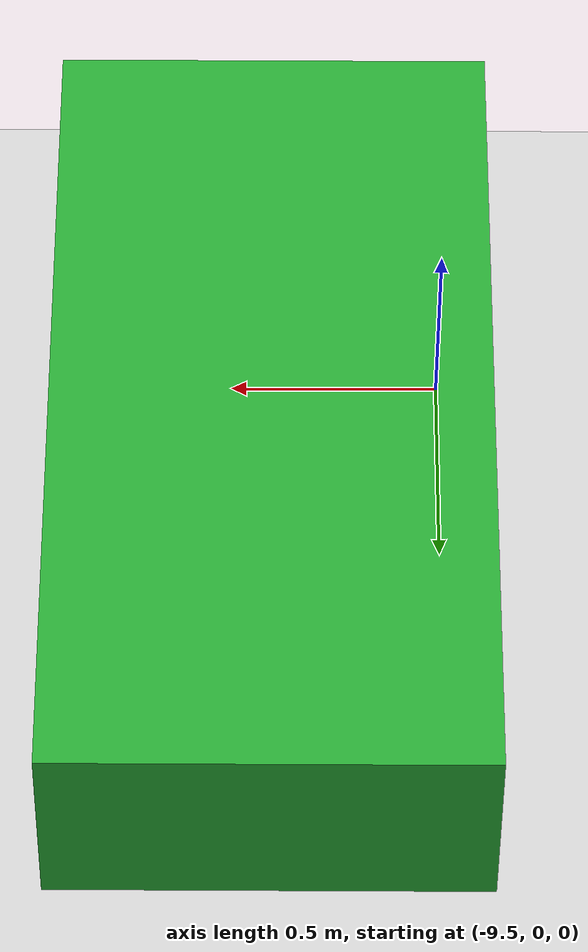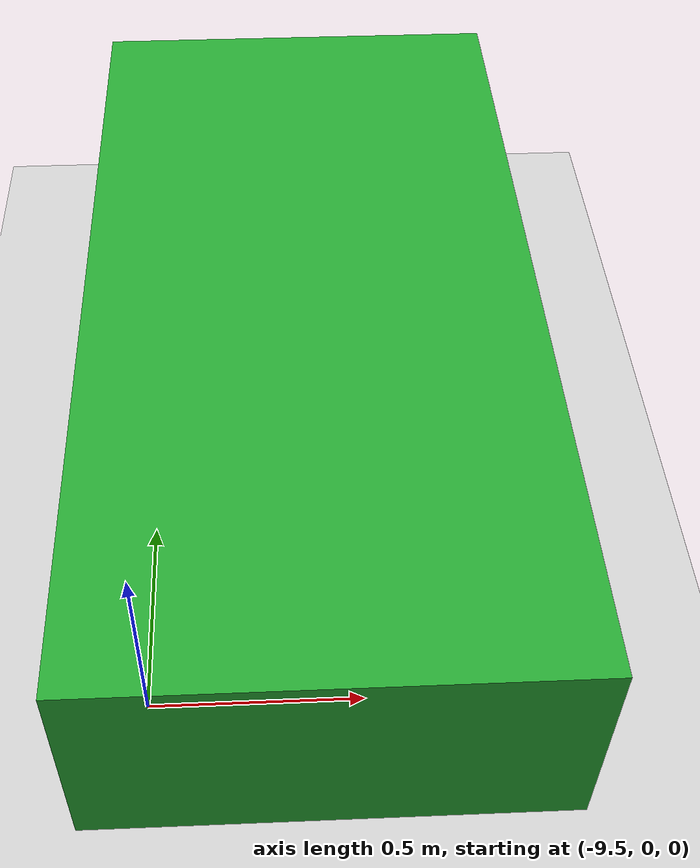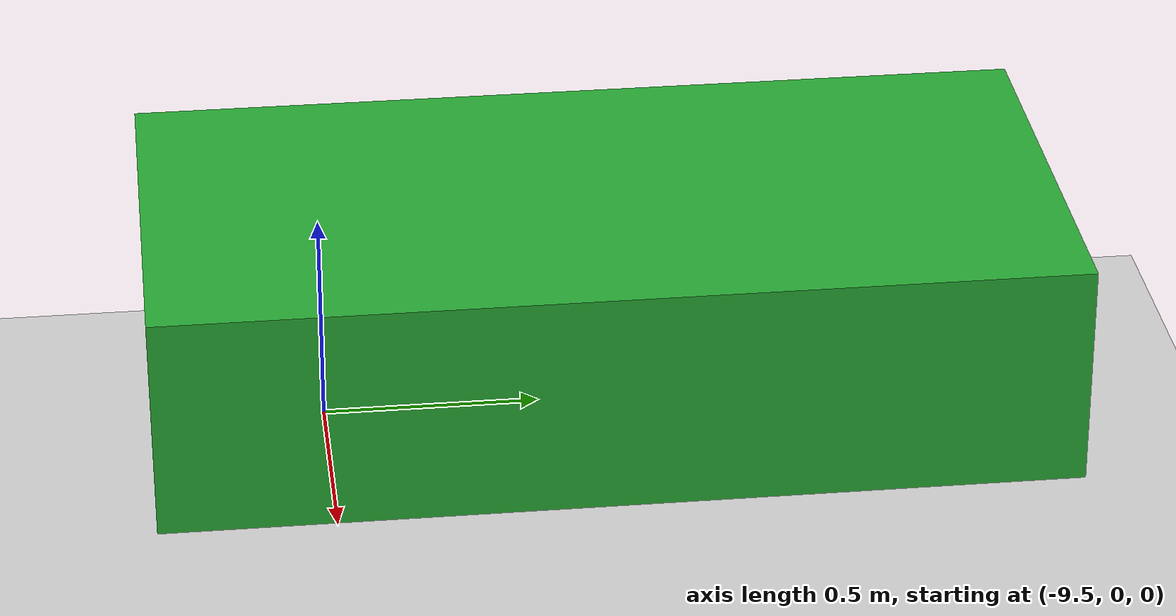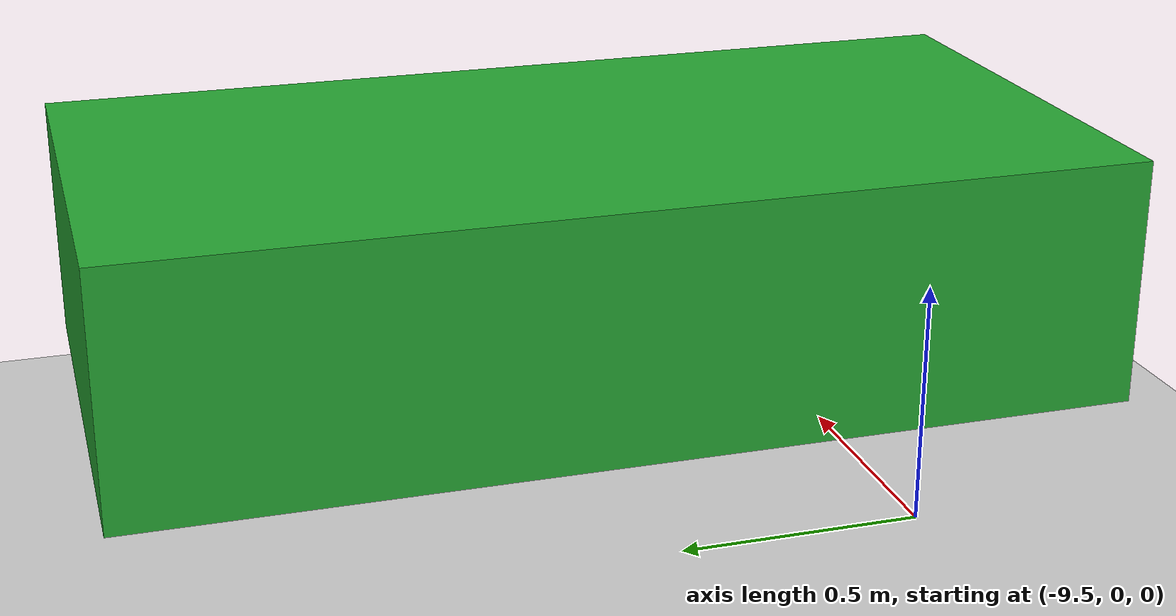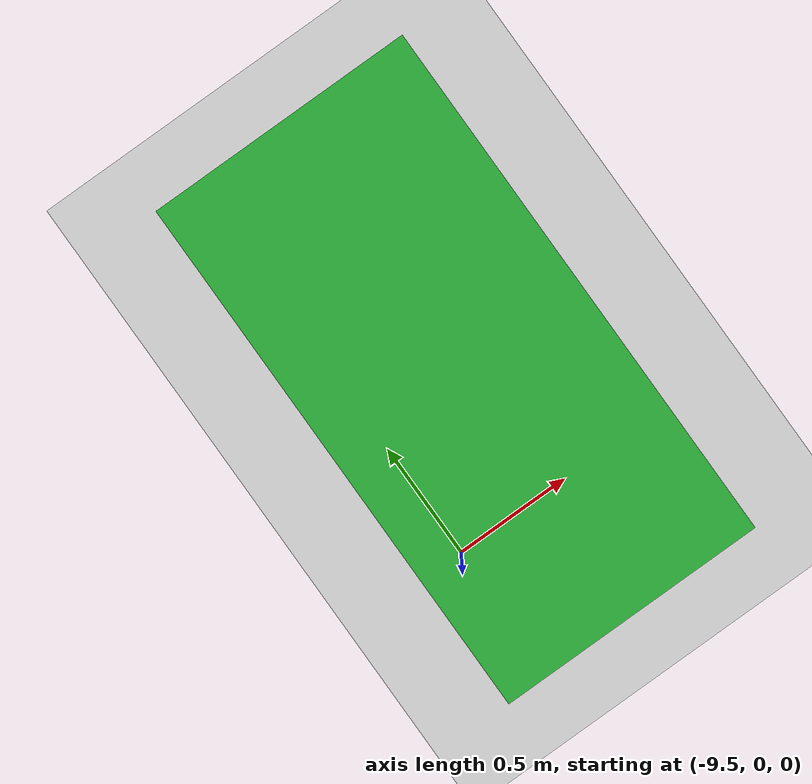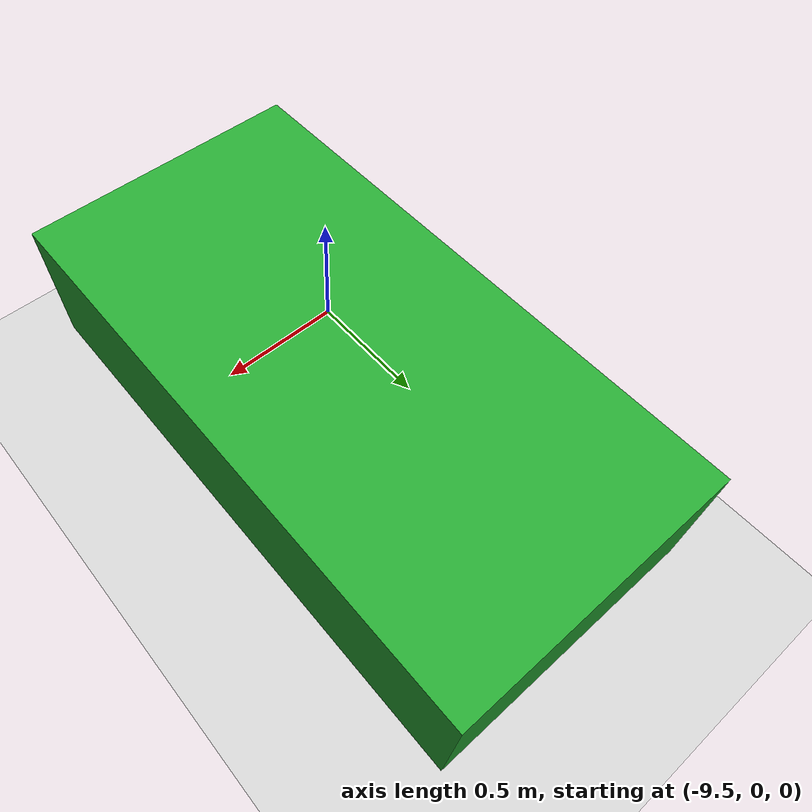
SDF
<sdf version='1.4'>
  <world name='default'>
    <physics type='ode'>
      <max_step_size>0.001</max_step_size>
      <real_time_factor>1</real_time_factor>
      <real_time_update_rate>1000</real_time_update_rate>
      <gravity>0 0 -9.8</gravity>
    </physics>
    <scene>
      <ambient>0.4 0.4 0.4 1</ambient>
      <background>0.7 0.7 0.7 1</background>
      <shadows>1</shadows>
    </scene>
    <spherical_coordinates>
      <surface_model>EARTH_WGS84</surface_model>
      <latitude_deg>0</latitude_deg>
      <longitude_deg>0</longitude_deg>
      <elevation>0</elevation>
      <heading_deg>0</heading_deg>
    </spherical_coordinates>
    <light name='sun' type='directional'>
      <cast_shadows>1</cast_shadows>
      <pose>0 0 10 0 -0 0</pose>
      <diffuse>0.8 0.8 0.8 1</diffuse>
      <specular>0.2 0.2 0.2 1</specular>
      <attenuation>
        <range>1000</range>
        <constant>0.9</constant>
        <linear>0.01</linear>
        <quadratic>0.001</quadratic>
      </attenuation>
      <direction>-0.5 0.1 -0.9</direction>
    </light>
    <model name='ground_plane'>
      <static>1</static>
      <link name='link'>
        <collision name='collision'>
          <geometry>
            <plane>
              <normal>0 0 1</normal>
              <size>100 100</size>
            </plane>
          </geometry>
          <surface>
            <friction>
              <ode>
                <mu>100</mu>
                <mu2>50</mu2>
              </ode>
            </friction>
            <bounce/>
            <contact>
              <ode/>
            </contact>
          </surface>
          <max_contacts>10</max_contacts>
        </collision>
        <visual name='visual'>
          <cast_shadows>0</cast_shadows>
          <geometry>
            <plane>
              <normal>0 0 1</normal>
              <size>100 100</size>
            </plane>
          </geometry>
          <material>
            <script>
              <uri>file://media/materials/scripts/gazebo.material</uri>
              <name>Gazebo/Grey</name>
            </script>
          </material>
        </visual>
        <velocity_decay>
          <linear>0</linear>
          <angular>0</angular>
        </velocity_decay>
        <self_collide>0</self_collide>
        <kinematic>0</kinematic>
        <gravity>1</gravity>
      </link>
    </model>
    <model name='unit_box'>
      <pose frame=''>-9.1 0.6 0.5 0 -0 0</pose>
      <link name='link'>
        <inertial>
          <mass>1</mass>
          <inertia>
            <ixx>0.354167</ixx>
            <ixy>0</ixy>
            <ixz>0</ixz>
            <iyy>0.104167</iyy>
            <iyz>0</iyz>
            <izz>0.416667</izz>
          </inertia>
          <pose frame=''>0 0 -0.2 0 -0 0</pose>
        </inertial>
        <collision name='collision'>
          <geometry>
            <box>
              <size>1 2 0.5</size>
            </box>
          </geometry>
          <max_contacts>10</max_contacts>
          <surface>
              <friction>
                <ode>
                  <mu>0.7</mu>
                  <mu2>0.7</mu2>
                </ode>
              </friction>
              <bounce/>
              <contact>
                <ode/>
              </contact>
            </surface>
        </collision>
        <visual name='visual'>
          <geometry>
            <box>
              <size>1 2 0.5</size>
            </box>
          </geometry>
          <material>
            <script>
              <name>Gazebo/GreenGlow</name>
              <uri>file://media/materials/scripts/gazebo.material</uri>
            </script>
          </material>
        </visual>
        <self_collide>0</self_collide>
        <enable_wind>0</enable_wind>
        <kinematic>0</kinematic>
      </link>
      <plugin name="model_pose_publisher_plugin" filename="libmodel_pose_publisher_plugin.so"/>
    </model>
    <gui fullscreen='0'>
      <camera name='user_camera'>
        <pose>0.59881 -4.06701 27.182 -2.2526e-16 1.3218 2.2322</pose>
        <view_controller>orbit</view_controller>
      </camera>
    </gui>
  </world>
</sdf>
